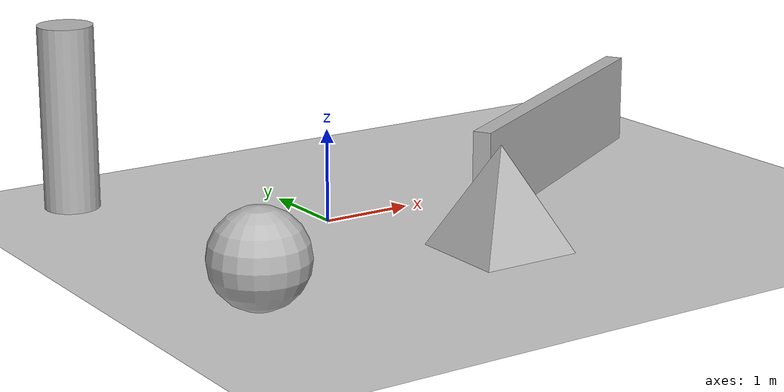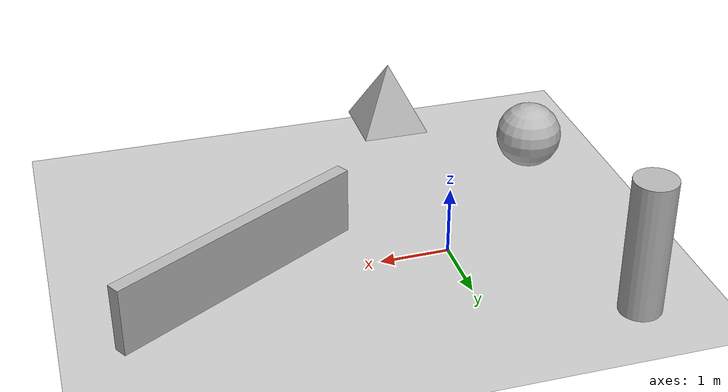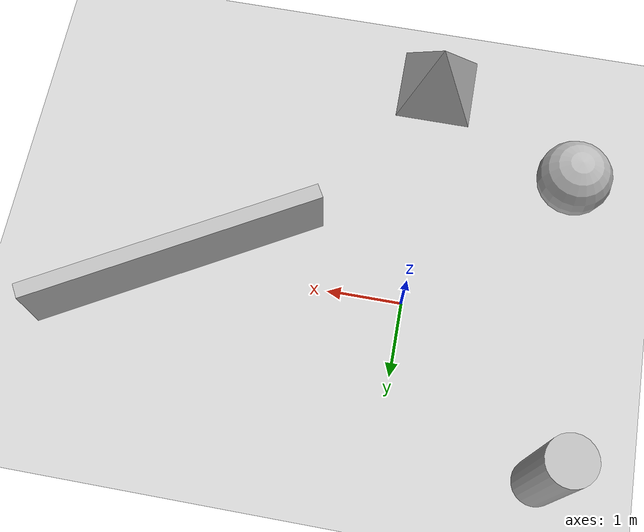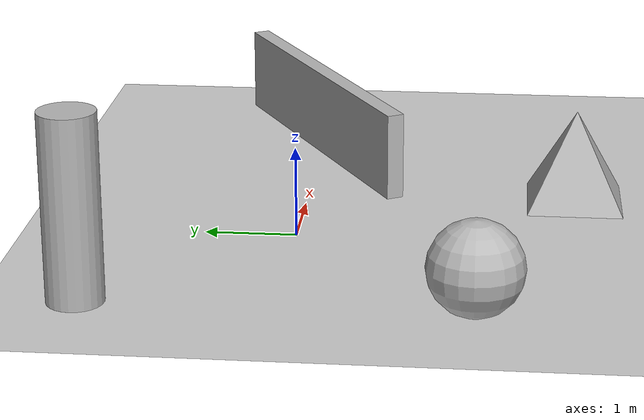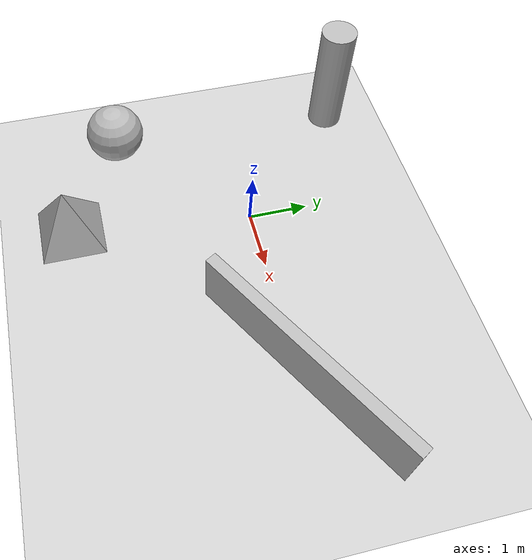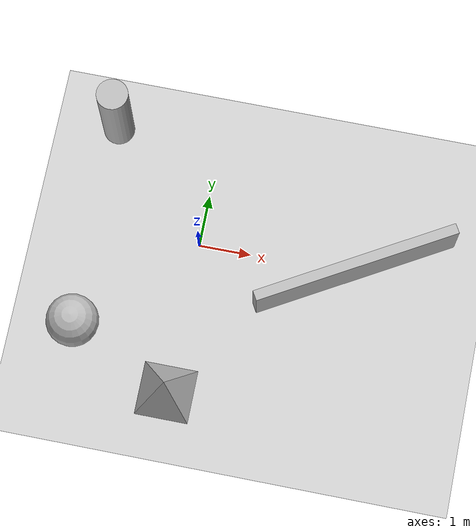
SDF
<?xml version="1.0"?>
<sdf version="1.9">
  <world name="sdf2map_test">

    <model name="ground_plane">
      <static>true</static>
      <link name="link">
        <collision name="collision">
          <geometry>
            <plane>
              <normal>0 0 1</normal>
              <size>20 20</size>
            </plane>
          </geometry>
        </collision>
        <visual name="visual">
          <geometry>
            <plane>
              <normal>0 0 1</normal>
              <size>20 20</size>
            </plane>
          </geometry>
        </visual>
      </link>
    </model>

    <model name="box_wall">
      <static>true</static>
      <pose>3 0 0.5 0 0 0.5236</pose>
      <link name="link">
        <collision name="collision">
          <geometry>
            <box><size>4 0.2 1</size></box>
          </geometry>
        </collision>
        <visual name="visual">
          <geometry>
            <box><size>4 0.2 1</size></box>
          </geometry>
        </visual>
      </link>
    </model>

    <model name="pillar">
      <static>true</static>
      <pose>-2 2 1 0 0 0</pose>
      <link name="link">
        <collision name="collision">
          <geometry>
            <cylinder><radius>0.3</radius><length>2</length></cylinder>
          </geometry>
        </collision>
        <visual name="visual">
          <geometry>
            <cylinder><radius>0.3</radius><length>2</length></cylinder>
          </geometry>
        </visual>
      </link>
    </model>

    <model name="ball">
      <static>true</static>
      <pose>-2 -2 0.5 0 0 0</pose>
      <link name="link">
        <collision name="collision">
          <geometry>
            <sphere><radius>0.5</radius></sphere>
          </geometry>
        </collision>
        <visual name="visual">
          <geometry>
            <sphere><radius>0.5</radius></sphere>
          </geometry>
        </visual>
      </link>
    </model>

    <model name="pylon">
      <static>true</static>
      <pose>0 -3 0 0 0 0</pose>
      <link name="link">
        <pose>0 0 0.5 0 0 0</pose>
        <collision name="collision">
          <geometry>
            <mesh>
              <uri>meshes/pyramid.stl</uri>
              <scale>1 1 1</scale>
            </mesh>
          </geometry>
        </collision>
        <visual name="visual">
          <geometry>
            <mesh>
              <uri>meshes/pyramid.stl</uri>
            </mesh>
          </geometry>
        </visual>
      </link>
    </model>

    <!-- Nested model + relative_to pose to exercise frame semantics -->
    <model name="shelf_unit">
      <static>true</static>
      <pose>2 3 0 0 0 1.5708</pose>
      <model name="shelf_base">
        <pose>0 0 0.25 0 0 0</pose>
        <link name="link">
          <collision name="collision">
            <geometry>
              <box><size>2 0.6 0.5</size></box>
            </geometry>
          </collision>
        </link>
      </model>
      <frame name="top_of_base" attached_to="shelf_base">
        <pose relative_to="shelf_base">0 0 0.5 0 0 0</pose>
      </frame>
      <model name="shelf_top">
        <pose relative_to="top_of_base">0 0 0.25 0 0 0</pose>
        <link name="link">
          <collision name="collision">
            <geometry>
              <box><size>2 0.6 0.5</size></box>
            </geometry>
          </collision>
        </link>
      </model>
    </model>

    <model name="capsule_obstacle">
      <static>true</static>
      <pose>4 -2 0.8 1.5708 0 0</pose>
      <link name="link">
        <collision name="collision">
          <geometry>
            <capsule><radius>0.2</radius><length>1</length></capsule>
          </geometry>
        </collision>
      </link>
    </model>

    <!-- Perimeter walls: make the world a closed room so registration
         tests (NDT) are well constrained, like real indoor worlds -->
    <model name="perimeter_walls">
      <static>true</static>
      <link name="link">
        <collision name="north">
          <pose>0 10 1 0 0 0</pose>
          <geometry><box><size>20 0.2 2</size></box></geometry>
        </collision>
        <collision name="south">
          <pose>0 -10 1 0 0 0</pose>
          <geometry><box><size>20 0.2 2</size></box></geometry>
        </collision>
        <collision name="east">
          <pose>10 0 1 0 0 0</pose>
          <geometry><box><size>0.2 20 2</size></box></geometry>
        </collision>
        <collision name="west">
          <pose>-10 0 1 0 0 0</pose>
          <geometry><box><size>0.2 20 2</size></box></geometry>
        </collision>
      </link>
    </model>

    <!-- Rotated collision under a translated parent: regression for the
         gz-math7 pose composition order (parent * child, matrix-style) -->
    <model name="offset_rotated">
      <static>true</static>
      <pose>5 5 0.5 0 0 0</pose>
      <link name="link">
        <collision name="collision">
          <pose>0 0 0 0 0 1.5708</pose>
          <geometry>
            <box><size>2 0.5 1</size></box>
          </geometry>
        </collision>
      </link>
    </model>

    <model name="rock">
      <static>true</static>
      <pose>-4 0 0.3 0 0 0</pose>
      <link name="link">
        <collision name="collision">
          <geometry>
            <ellipsoid><radii>0.6 0.4 0.3</radii></ellipsoid>
          </geometry>
        </collision>
      </link>
    </model>

  </world>
</sdf>
